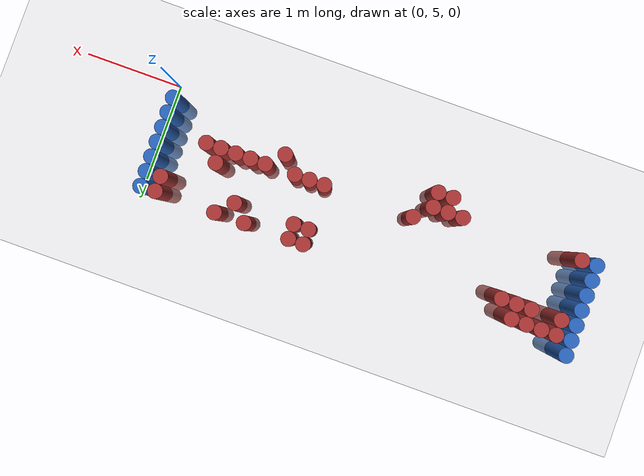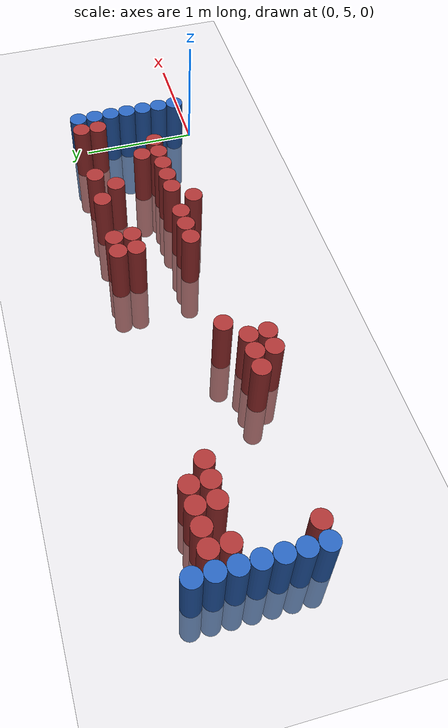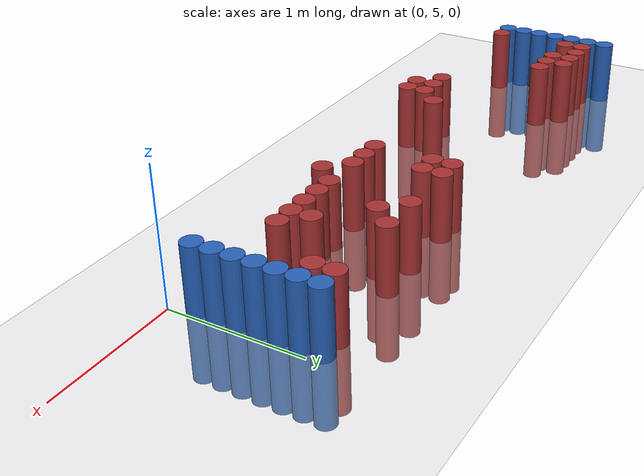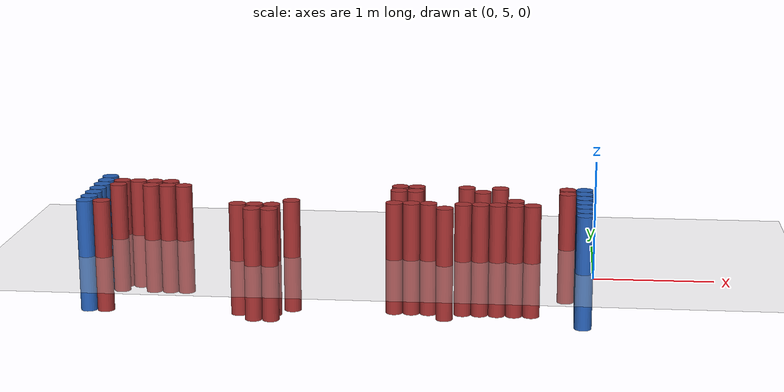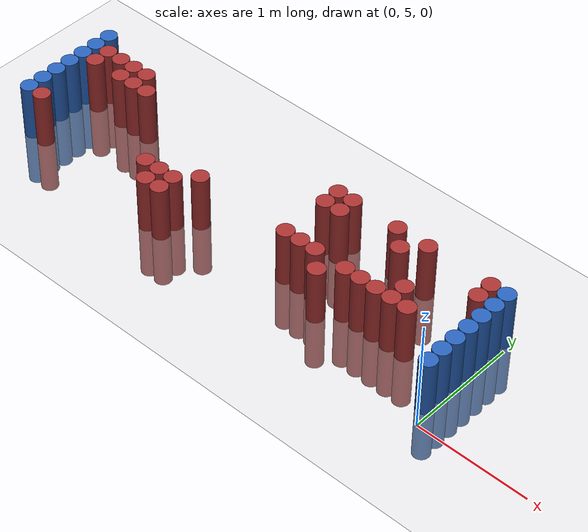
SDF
<sdf version="1.6">
 <world name="default">
  <model name="ground_plane">
   <static>1</static>
   <link name="link">
    <collision name="collision">
     <geometry><plane><normal>0 0 1</normal><size>100 100</size></plane></geometry>
     <surface><friction><ode><mu>100</mu><mu2>50</mu2></ode></friction></surface>
    </collision>
    <visual name="visual">
     <cast_shadows>0</cast_shadows>
     <geometry><plane><normal>0 0 1</normal><size>100 100</size></plane></geometry>
     <material>
      <script><uri>file://media/materials/scripts/gazebo.material</uri><name>Gazebo/Grey</name></script>
     </material>
    </visual>
   </link>
  </model>
  <model name="unit_cylinder_97">
   <static>1</static>
   <pose>-4.425000 5.325000 0.000000 0.000000 0.000000 0.000000</pose>
   <link name="link">
    <inertial>
     <mass>1</mass>
     <inertia><ixx>0.145833</ixx><ixy>0</ixy><ixz>0</ixz><iyy>0.145833</iyy><iyz>0</iyz><izz>0.125</izz></inertia>
    </inertial>
    <collision name="collision">
     <geometry><cylinder><radius>0.075000</radius><length>1</length></cylinder></geometry>
    </collision>
    <visual name="visual">
     <geometry><cylinder><radius>0.075000</radius><length>1</length></cylinder></geometry>
     <material>
      <ambient>0.152000 0.379000 0.720000 1</ambient>
      <diffuse>0.152000 0.379000 0.720000 1</diffuse>
     </material>
     <material>
      <script><name>Gazebo/Grey</name><uri>file://media/materials/scripts/gazebo.material</uri></script>
     </material>
    </visual>
   </link>
  </model>
  <model name="unit_cylinder_98">
   <static>1</static>
   <pose>-4.425000 5.475000 0.000000 0.000000 0.000000 0.000000</pose>
   <link name="link">
    <inertial>
     <mass>1</mass>
     <inertia><ixx>0.145833</ixx><ixy>0</ixy><ixz>0</ixz><iyy>0.145833</iyy><iyz>0</iyz><izz>0.125</izz></inertia>
    </inertial>
    <collision name="collision">
     <geometry><cylinder><radius>0.075000</radius><length>1</length></cylinder></geometry>
    </collision>
    <visual name="visual">
     <geometry><cylinder><radius>0.075000</radius><length>1</length></cylinder></geometry>
     <material>
      <ambient>0.152000 0.379000 0.720000 1</ambient>
      <diffuse>0.152000 0.379000 0.720000 1</diffuse>
     </material>
     <material>
      <script><name>Gazebo/Grey</name><uri>file://media/materials/scripts/gazebo.material</uri></script>
     </material>
    </visual>
   </link>
  </model>
  <model name="unit_cylinder_99">
   <static>1</static>
   <pose>-4.425000 5.625000 0.000000 0.000000 0.000000 0.000000</pose>
   <link name="link">
    <inertial>
     <mass>1</mass>
     <inertia><ixx>0.145833</ixx><ixy>0</ixy><ixz>0</ixz><iyy>0.145833</iyy><iyz>0</iyz><izz>0.125</izz></inertia>
    </inertial>
    <collision name="collision">
     <geometry><cylinder><radius>0.075000</radius><length>1</length></cylinder></geometry>
    </collision>
    <visual name="visual">
     <geometry><cylinder><radius>0.075000</radius><length>1</length></cylinder></geometry>
     <material>
      <ambient>0.152000 0.379000 0.720000 1</ambient>
      <diffuse>0.152000 0.379000 0.720000 1</diffuse>
     </material>
     <material>
      <script><name>Gazebo/Grey</name><uri>file://media/materials/scripts/gazebo.material</uri></script>
     </material>
    </visual>
   </link>
  </model>
  <model name="unit_cylinder_100">
   <static>1</static>
   <pose>-4.425000 5.775000 0.000000 0.000000 0.000000 0.000000</pose>
   <link name="link">
    <inertial>
     <mass>1</mass>
     <inertia><ixx>0.145833</ixx><ixy>0</ixy><ixz>0</ixz><iyy>0.145833</iyy><iyz>0</iyz><izz>0.125</izz></inertia>
    </inertial>
    <collision name="collision">
     <geometry><cylinder><radius>0.075000</radius><length>1</length></cylinder></geometry>
    </collision>
    <visual name="visual">
     <geometry><cylinder><radius>0.075000</radius><length>1</length></cylinder></geometry>
     <material>
      <ambient>0.152000 0.379000 0.720000 1</ambient>
      <diffuse>0.152000 0.379000 0.720000 1</diffuse>
     </material>
     <material>
      <script><name>Gazebo/Grey</name><uri>file://media/materials/scripts/gazebo.material</uri></script>
     </material>
    </visual>
   </link>
  </model>
  <model name="unit_cylinder_101">
   <static>1</static>
   <pose>-4.425000 5.925000 0.000000 0.000000 0.000000 0.000000</pose>
   <link name="link">
    <inertial>
     <mass>1</mass>
     <inertia><ixx>0.145833</ixx><ixy>0</ixy><ixz>0</ixz><iyy>0.145833</iyy><iyz>0</iyz><izz>0.125</izz></inertia>
    </inertial>
    <collision name="collision">
     <geometry><cylinder><radius>0.075000</radius><length>1</length></cylinder></geometry>
    </collision>
    <visual name="visual">
     <geometry><cylinder><radius>0.075000</radius><length>1</length></cylinder></geometry>
     <material>
      <ambient>0.152000 0.379000 0.720000 1</ambient>
      <diffuse>0.152000 0.379000 0.720000 1</diffuse>
     </material>
     <material>
      <script><name>Gazebo/Grey</name><uri>file://media/materials/scripts/gazebo.material</uri></script>
     </material>
    </visual>
   </link>
  </model>
  <model name="unit_cylinder_102">
   <static>1</static>
   <pose>-4.425000 6.075000 0.000000 0.000000 0.000000 0.000000</pose>
   <link name="link">
    <inertial>
     <mass>1</mass>
     <inertia><ixx>0.145833</ixx><ixy>0</ixy><ixz>0</ixz><iyy>0.145833</iyy><iyz>0</iyz><izz>0.125</izz></inertia>
    </inertial>
    <collision name="collision">
     <geometry><cylinder><radius>0.075000</radius><length>1</length></cylinder></geometry>
    </collision>
    <visual name="visual">
     <geometry><cylinder><radius>0.075000</radius><length>1</length></cylinder></geometry>
     <material>
      <ambient>0.152000 0.379000 0.720000 1</ambient>
      <diffuse>0.152000 0.379000 0.720000 1</diffuse>
     </material>
     <material>
      <script><name>Gazebo/Grey</name><uri>file://media/materials/scripts/gazebo.material</uri></script>
     </material>
    </visual>
   </link>
  </model>
  <model name="unit_cylinder_103">
   <static>1</static>
   <pose>-4.425000 6.225000 0.000000 0.000000 0.000000 0.000000</pose>
   <link name="link">
    <inertial>
     <mass>1</mass>
     <inertia><ixx>0.145833</ixx><ixy>0</ixy><ixz>0</ixz><iyy>0.145833</iyy><iyz>0</iyz><izz>0.125</izz></inertia>
    </inertial>
    <collision name="collision">
     <geometry><cylinder><radius>0.075000</radius><length>1</length></cylinder></geometry>
    </collision>
    <visual name="visual">
     <geometry><cylinder><radius>0.075000</radius><length>1</length></cylinder></geometry>
     <material>
      <ambient>0.152000 0.379000 0.720000 1</ambient>
      <diffuse>0.152000 0.379000 0.720000 1</diffuse>
     </material>
     <material>
      <script><name>Gazebo/Grey</name><uri>file://media/materials/scripts/gazebo.material</uri></script>
     </material>
    </visual>
   </link>
  </model>
  <model name="unit_cylinder_126">
   <static>1</static>
   <pose>-4.275000 5.325000 0.000000 0.000000 0.000000 0.000000</pose>
   <link name="link">
    <inertial>
     <mass>1</mass>
     <inertia><ixx>0.145833</ixx><ixy>0</ixy><ixz>0</ixz><iyy>0.145833</iyy><iyz>0</iyz><izz>0.125</izz></inertia>
    </inertial>
    <collision name="collision">
     <geometry><cylinder><radius>0.075000</radius><length>1</length></cylinder></geometry>
    </collision>
    <visual name="visual">
     <geometry><cylinder><radius>0.075000</radius><length>1</length></cylinder></geometry>
     <material>
      <ambient>0.648000 0.192000 0.192000 1</ambient>
      <diffuse>0.648000 0.192000 0.192000 1</diffuse>
     </material>
     <material>
      <script><name>Gazebo/Grey</name><uri>file://media/materials/scripts/gazebo.material</uri></script>
     </material>
    </visual>
   </link>
  </model>
  <model name="unit_cylinder_127">
   <static>1</static>
   <pose>-4.275000 5.925000 0.000000 0.000000 0.000000 0.000000</pose>
   <link name="link">
    <inertial>
     <mass>1</mass>
     <inertia><ixx>0.145833</ixx><ixy>0</ixy><ixz>0</ixz><iyy>0.145833</iyy><iyz>0</iyz><izz>0.125</izz></inertia>
    </inertial>
    <collision name="collision">
     <geometry><cylinder><radius>0.075000</radius><length>1</length></cylinder></geometry>
    </collision>
    <visual name="visual">
     <geometry><cylinder><radius>0.075000</radius><length>1</length></cylinder></geometry>
     <material>
      <ambient>0.648000 0.192000 0.192000 1</ambient>
      <diffuse>0.648000 0.192000 0.192000 1</diffuse>
     </material>
     <material>
      <script><name>Gazebo/Grey</name><uri>file://media/materials/scripts/gazebo.material</uri></script>
     </material>
    </visual>
   </link>
  </model>
  <model name="unit_cylinder_128">
   <static>1</static>
   <pose>-4.275000 6.075000 0.000000 0.000000 0.000000 0.000000</pose>
   <link name="link">
    <inertial>
     <mass>1</mass>
     <inertia><ixx>0.145833</ixx><ixy>0</ixy><ixz>0</ixz><iyy>0.145833</iyy><iyz>0</iyz><izz>0.125</izz></inertia>
    </inertial>
    <collision name="collision">
     <geometry><cylinder><radius>0.075000</radius><length>1</length></cylinder></geometry>
    </collision>
    <visual name="visual">
     <geometry><cylinder><radius>0.075000</radius><length>1</length></cylinder></geometry>
     <material>
      <ambient>0.648000 0.192000 0.192000 1</ambient>
      <diffuse>0.648000 0.192000 0.192000 1</diffuse>
     </material>
     <material>
      <script><name>Gazebo/Grey</name><uri>file://media/materials/scripts/gazebo.material</uri></script>
     </material>
    </visual>
   </link>
  </model>
  <model name="unit_cylinder_143">
   <static>1</static>
   <pose>-4.125000 6.075000 0.000000 0.000000 0.000000 0.000000</pose>
   <link name="link">
    <inertial>
     <mass>1</mass>
     <inertia><ixx>0.145833</ixx><ixy>0</ixy><ixz>0</ixz><iyy>0.145833</iyy><iyz>0</iyz><izz>0.125</izz></inertia>
    </inertial>
    <collision name="collision">
     <geometry><cylinder><radius>0.075000</radius><length>1</length></cylinder></geometry>
    </collision>
    <visual name="visual">
     <geometry><cylinder><radius>0.075000</radius><length>1</length></cylinder></geometry>
     <material>
      <ambient>0.648000 0.192000 0.192000 1</ambient>
      <diffuse>0.648000 0.192000 0.192000 1</diffuse>
     </material>
     <material>
      <script><name>Gazebo/Grey</name><uri>file://media/materials/scripts/gazebo.material</uri></script>
     </material>
    </visual>
   </link>
  </model>
  <model name="unit_cylinder_157">
   <static>1</static>
   <pose>-3.975000 5.925000 0.000000 0.000000 0.000000 0.000000</pose>
   <link name="link">
    <inertial>
     <mass>1</mass>
     <inertia><ixx>0.145833</ixx><ixy>0</ixy><ixz>0</ixz><iyy>0.145833</iyy><iyz>0</iyz><izz>0.125</izz></inertia>
    </inertial>
    <collision name="collision">
     <geometry><cylinder><radius>0.075000</radius><length>1</length></cylinder></geometry>
    </collision>
    <visual name="visual">
     <geometry><cylinder><radius>0.075000</radius><length>1</length></cylinder></geometry>
     <material>
      <ambient>0.648000 0.192000 0.192000 1</ambient>
      <diffuse>0.648000 0.192000 0.192000 1</diffuse>
     </material>
     <material>
      <script><name>Gazebo/Grey</name><uri>file://media/materials/scripts/gazebo.material</uri></script>
     </material>
    </visual>
   </link>
  </model>
  <model name="unit_cylinder_158">
   <static>1</static>
   <pose>-3.975000 6.075000 0.000000 0.000000 0.000000 0.000000</pose>
   <link name="link">
    <inertial>
     <mass>1</mass>
     <inertia><ixx>0.145833</ixx><ixy>0</ixy><ixz>0</ixz><iyy>0.145833</iyy><iyz>0</iyz><izz>0.125</izz></inertia>
    </inertial>
    <collision name="collision">
     <geometry><cylinder><radius>0.075000</radius><length>1</length></cylinder></geometry>
    </collision>
    <visual name="visual">
     <geometry><cylinder><radius>0.075000</radius><length>1</length></cylinder></geometry>
     <material>
      <ambient>0.648000 0.192000 0.192000 1</ambient>
      <diffuse>0.648000 0.192000 0.192000 1</diffuse>
     </material>
     <material>
      <script><name>Gazebo/Grey</name><uri>file://media/materials/scripts/gazebo.material</uri></script>
     </material>
    </visual>
   </link>
  </model>
  <model name="unit_cylinder_161">
   <static>1</static>
   <pose>-3.825000 5.925000 0.000000 0.000000 0.000000 0.000000</pose>
   <link name="link">
    <inertial>
     <mass>1</mass>
     <inertia><ixx>0.145833</ixx><ixy>0</ixy><ixz>0</ixz><iyy>0.145833</iyy><iyz>0</iyz><izz>0.125</izz></inertia>
    </inertial>
    <collision name="collision">
     <geometry><cylinder><radius>0.075000</radius><length>1</length></cylinder></geometry>
    </collision>
    <visual name="visual">
     <geometry><cylinder><radius>0.075000</radius><length>1</length></cylinder></geometry>
     <material>
      <ambient>0.648000 0.192000 0.192000 1</ambient>
      <diffuse>0.648000 0.192000 0.192000 1</diffuse>
     </material>
     <material>
      <script><name>Gazebo/Grey</name><uri>file://media/materials/scripts/gazebo.material</uri></script>
     </material>
    </visual>
   </link>
  </model>
  <model name="unit_cylinder_162">
   <static>1</static>
   <pose>-3.825000 6.075000 0.000000 0.000000 0.000000 0.000000</pose>
   <link name="link">
    <inertial>
     <mass>1</mass>
     <inertia><ixx>0.145833</ixx><ixy>0</ixy><ixz>0</ixz><iyy>0.145833</iyy><iyz>0</iyz><izz>0.125</izz></inertia>
    </inertial>
    <collision name="collision">
     <geometry><cylinder><radius>0.075000</radius><length>1</length></cylinder></geometry>
    </collision>
    <visual name="visual">
     <geometry><cylinder><radius>0.075000</radius><length>1</length></cylinder></geometry>
     <material>
      <ambient>0.648000 0.192000 0.192000 1</ambient>
      <diffuse>0.648000 0.192000 0.192000 1</diffuse>
     </material>
     <material>
      <script><name>Gazebo/Grey</name><uri>file://media/materials/scripts/gazebo.material</uri></script>
     </material>
    </visual>
   </link>
  </model>
  <model name="unit_cylinder_168">
   <static>1</static>
   <pose>-3.675000 5.925000 0.000000 0.000000 0.000000 0.000000</pose>
   <link name="link">
    <inertial>
     <mass>1</mass>
     <inertia><ixx>0.145833</ixx><ixy>0</ixy><ixz>0</ixz><iyy>0.145833</iyy><iyz>0</iyz><izz>0.125</izz></inertia>
    </inertial>
    <collision name="collision">
     <geometry><cylinder><radius>0.075000</radius><length>1</length></cylinder></geometry>
    </collision>
    <visual name="visual">
     <geometry><cylinder><radius>0.075000</radius><length>1</length></cylinder></geometry>
     <material>
      <ambient>0.648000 0.192000 0.192000 1</ambient>
      <diffuse>0.648000 0.192000 0.192000 1</diffuse>
     </material>
     <material>
      <script><name>Gazebo/Grey</name><uri>file://media/materials/scripts/gazebo.material</uri></script>
     </material>
    </visual>
   </link>
  </model>
  <model name="unit_cylinder_187">
   <static>1</static>
   <pose>-3.075000 5.325000 0.000000 0.000000 0.000000 0.000000</pose>
   <link name="link">
    <inertial>
     <mass>1</mass>
     <inertia><ixx>0.145833</ixx><ixy>0</ixy><ixz>0</ixz><iyy>0.145833</iyy><iyz>0</iyz><izz>0.125</izz></inertia>
    </inertial>
    <collision name="collision">
     <geometry><cylinder><radius>0.075000</radius><length>1</length></cylinder></geometry>
    </collision>
    <visual name="visual">
     <geometry><cylinder><radius>0.075000</radius><length>1</length></cylinder></geometry>
     <material>
      <ambient>0.648000 0.192000 0.192000 1</ambient>
      <diffuse>0.648000 0.192000 0.192000 1</diffuse>
     </material>
     <material>
      <script><name>Gazebo/Grey</name><uri>file://media/materials/scripts/gazebo.material</uri></script>
     </material>
    </visual>
   </link>
  </model>
  <model name="unit_cylinder_196">
   <static>1</static>
   <pose>-2.925000 5.175000 0.000000 0.000000 0.000000 0.000000</pose>
   <link name="link">
    <inertial>
     <mass>1</mass>
     <inertia><ixx>0.145833</ixx><ixy>0</ixy><ixz>0</ixz><iyy>0.145833</iyy><iyz>0</iyz><izz>0.125</izz></inertia>
    </inertial>
    <collision name="collision">
     <geometry><cylinder><radius>0.075000</radius><length>1</length></cylinder></geometry>
    </collision>
    <visual name="visual">
     <geometry><cylinder><radius>0.075000</radius><length>1</length></cylinder></geometry>
     <material>
      <ambient>0.648000 0.192000 0.192000 1</ambient>
      <diffuse>0.648000 0.192000 0.192000 1</diffuse>
     </material>
     <material>
      <script><name>Gazebo/Grey</name><uri>file://media/materials/scripts/gazebo.material</uri></script>
     </material>
    </visual>
   </link>
  </model>
  <model name="unit_cylinder_197">
   <static>1</static>
   <pose>-2.925000 5.325000 0.000000 0.000000 0.000000 0.000000</pose>
   <link name="link">
    <inertial>
     <mass>1</mass>
     <inertia><ixx>0.145833</ixx><ixy>0</ixy><ixz>0</ixz><iyy>0.145833</iyy><iyz>0</iyz><izz>0.125</izz></inertia>
    </inertial>
    <collision name="collision">
     <geometry><cylinder><radius>0.075000</radius><length>1</length></cylinder></geometry>
    </collision>
    <visual name="visual">
     <geometry><cylinder><radius>0.075000</radius><length>1</length></cylinder></geometry>
     <material>
      <ambient>0.648000 0.192000 0.192000 1</ambient>
      <diffuse>0.648000 0.192000 0.192000 1</diffuse>
     </material>
     <material>
      <script><name>Gazebo/Grey</name><uri>file://media/materials/scripts/gazebo.material</uri></script>
     </material>
    </visual>
   </link>
  </model>
  <model name="unit_cylinder_206">
   <static>1</static>
   <pose>-2.775000 5.175000 0.000000 0.000000 0.000000 0.000000</pose>
   <link name="link">
    <inertial>
     <mass>1</mass>
     <inertia><ixx>0.145833</ixx><ixy>0</ixy><ixz>0</ixz><iyy>0.145833</iyy><iyz>0</iyz><izz>0.125</izz></inertia>
    </inertial>
    <collision name="collision">
     <geometry><cylinder><radius>0.075000</radius><length>1</length></cylinder></geometry>
    </collision>
    <visual name="visual">
     <geometry><cylinder><radius>0.075000</radius><length>1</length></cylinder></geometry>
     <material>
      <ambient>0.648000 0.192000 0.192000 1</ambient>
      <diffuse>0.648000 0.192000 0.192000 1</diffuse>
     </material>
     <material>
      <script><name>Gazebo/Grey</name><uri>file://media/materials/scripts/gazebo.material</uri></script>
     </material>
    </visual>
   </link>
  </model>
  <model name="unit_cylinder_207">
   <static>1</static>
   <pose>-2.775000 5.325000 0.000000 0.000000 0.000000 0.000000</pose>
   <link name="link">
    <inertial>
     <mass>1</mass>
     <inertia><ixx>0.145833</ixx><ixy>0</ixy><ixz>0</ixz><iyy>0.145833</iyy><iyz>0</iyz><izz>0.125</izz></inertia>
    </inertial>
    <collision name="collision">
     <geometry><cylinder><radius>0.075000</radius><length>1</length></cylinder></geometry>
    </collision>
    <visual name="visual">
     <geometry><cylinder><radius>0.075000</radius><length>1</length></cylinder></geometry>
     <material>
      <ambient>0.648000 0.192000 0.192000 1</ambient>
      <diffuse>0.648000 0.192000 0.192000 1</diffuse>
     </material>
     <material>
      <script><name>Gazebo/Grey</name><uri>file://media/materials/scripts/gazebo.material</uri></script>
     </material>
    </visual>
   </link>
  </model>
  <model name="unit_cylinder_214">
   <static>1</static>
   <pose>-2.625000 5.475000 0.000000 0.000000 0.000000 0.000000</pose>
   <link name="link">
    <inertial>
     <mass>1</mass>
     <inertia><ixx>0.145833</ixx><ixy>0</ixy><ixz>0</ixz><iyy>0.145833</iyy><iyz>0</iyz><izz>0.125</izz></inertia>
    </inertial>
    <collision name="collision">
     <geometry><cylinder><radius>0.075000</radius><length>1</length></cylinder></geometry>
    </collision>
    <visual name="visual">
     <geometry><cylinder><radius>0.075000</radius><length>1</length></cylinder></geometry>
     <material>
      <ambient>0.648000 0.192000 0.192000 1</ambient>
      <diffuse>0.648000 0.192000 0.192000 1</diffuse>
     </material>
     <material>
      <script><name>Gazebo/Grey</name><uri>file://media/materials/scripts/gazebo.material</uri></script>
     </material>
    </visual>
   </link>
  </model>
  <model name="unit_cylinder_249">
   <static>1</static>
   <pose>-1.725000 5.475000 0.000000 0.000000 0.000000 0.000000</pose>
   <link name="link">
    <inertial>
     <mass>1</mass>
     <inertia><ixx>0.145833</ixx><ixy>0</ixy><ixz>0</ixz><iyy>0.145833</iyy><iyz>0</iyz><izz>0.125</izz></inertia>
    </inertial>
    <collision name="collision">
     <geometry><cylinder><radius>0.075000</radius><length>1</length></cylinder></geometry>
    </collision>
    <visual name="visual">
     <geometry><cylinder><radius>0.075000</radius><length>1</length></cylinder></geometry>
     <material>
      <ambient>0.648000 0.192000 0.192000 1</ambient>
      <diffuse>0.648000 0.192000 0.192000 1</diffuse>
     </material>
     <material>
      <script><name>Gazebo/Grey</name><uri>file://media/materials/scripts/gazebo.material</uri></script>
     </material>
    </visual>
   </link>
  </model>
  <model name="unit_cylinder_250">
   <static>1</static>
   <pose>-1.725000 5.925000 0.000000 0.000000 0.000000 0.000000</pose>
   <link name="link">
    <inertial>
     <mass>1</mass>
     <inertia><ixx>0.145833</ixx><ixy>0</ixy><ixz>0</ixz><iyy>0.145833</iyy><iyz>0</iyz><izz>0.125</izz></inertia>
    </inertial>
    <collision name="collision">
     <geometry><cylinder><radius>0.075000</radius><length>1</length></cylinder></geometry>
    </collision>
    <visual name="visual">
     <geometry><cylinder><radius>0.075000</radius><length>1</length></cylinder></geometry>
     <material>
      <ambient>0.648000 0.192000 0.192000 1</ambient>
      <diffuse>0.648000 0.192000 0.192000 1</diffuse>
     </material>
     <material>
      <script><name>Gazebo/Grey</name><uri>file://media/materials/scripts/gazebo.material</uri></script>
     </material>
    </visual>
   </link>
  </model>
  <model name="unit_cylinder_251">
   <static>1</static>
   <pose>-1.725000 6.075000 0.000000 0.000000 0.000000 0.000000</pose>
   <link name="link">
    <inertial>
     <mass>1</mass>
     <inertia><ixx>0.145833</ixx><ixy>0</ixy><ixz>0</ixz><iyy>0.145833</iyy><iyz>0</iyz><izz>0.125</izz></inertia>
    </inertial>
    <collision name="collision">
     <geometry><cylinder><radius>0.075000</radius><length>1</length></cylinder></geometry>
    </collision>
    <visual name="visual">
     <geometry><cylinder><radius>0.075000</radius><length>1</length></cylinder></geometry>
     <material>
      <ambient>0.648000 0.192000 0.192000 1</ambient>
      <diffuse>0.648000 0.192000 0.192000 1</diffuse>
     </material>
     <material>
      <script><name>Gazebo/Grey</name><uri>file://media/materials/scripts/gazebo.material</uri></script>
     </material>
    </visual>
   </link>
  </model>
  <model name="unit_cylinder_252">
   <static>1</static>
   <pose>-1.575000 5.475000 0.000000 0.000000 0.000000 0.000000</pose>
   <link name="link">
    <inertial>
     <mass>1</mass>
     <inertia><ixx>0.145833</ixx><ixy>0</ixy><ixz>0</ixz><iyy>0.145833</iyy><iyz>0</iyz><izz>0.125</izz></inertia>
    </inertial>
    <collision name="collision">
     <geometry><cylinder><radius>0.075000</radius><length>1</length></cylinder></geometry>
    </collision>
    <visual name="visual">
     <geometry><cylinder><radius>0.075000</radius><length>1</length></cylinder></geometry>
     <material>
      <ambient>0.648000 0.192000 0.192000 1</ambient>
      <diffuse>0.648000 0.192000 0.192000 1</diffuse>
     </material>
     <material>
      <script><name>Gazebo/Grey</name><uri>file://media/materials/scripts/gazebo.material</uri></script>
     </material>
    </visual>
   </link>
  </model>
  <model name="unit_cylinder_253">
   <static>1</static>
   <pose>-1.575000 5.925000 0.000000 0.000000 0.000000 0.000000</pose>
   <link name="link">
    <inertial>
     <mass>1</mass>
     <inertia><ixx>0.145833</ixx><ixy>0</ixy><ixz>0</ixz><iyy>0.145833</iyy><iyz>0</iyz><izz>0.125</izz></inertia>
    </inertial>
    <collision name="collision">
     <geometry><cylinder><radius>0.075000</radius><length>1</length></cylinder></geometry>
    </collision>
    <visual name="visual">
     <geometry><cylinder><radius>0.075000</radius><length>1</length></cylinder></geometry>
     <material>
      <ambient>0.648000 0.192000 0.192000 1</ambient>
      <diffuse>0.648000 0.192000 0.192000 1</diffuse>
     </material>
     <material>
      <script><name>Gazebo/Grey</name><uri>file://media/materials/scripts/gazebo.material</uri></script>
     </material>
    </visual>
   </link>
  </model>
  <model name="unit_cylinder_254">
   <static>1</static>
   <pose>-1.575000 6.075000 0.000000 0.000000 0.000000 0.000000</pose>
   <link name="link">
    <inertial>
     <mass>1</mass>
     <inertia><ixx>0.145833</ixx><ixy>0</ixy><ixz>0</ixz><iyy>0.145833</iyy><iyz>0</iyz><izz>0.125</izz></inertia>
    </inertial>
    <collision name="collision">
     <geometry><cylinder><radius>0.075000</radius><length>1</length></cylinder></geometry>
    </collision>
    <visual name="visual">
     <geometry><cylinder><radius>0.075000</radius><length>1</length></cylinder></geometry>
     <material>
      <ambient>0.648000 0.192000 0.192000 1</ambient>
      <diffuse>0.648000 0.192000 0.192000 1</diffuse>
     </material>
     <material>
      <script><name>Gazebo/Grey</name><uri>file://media/materials/scripts/gazebo.material</uri></script>
     </material>
    </visual>
   </link>
  </model>
  <model name="unit_cylinder_257">
   <static>1</static>
   <pose>-1.425000 5.475000 0.000000 0.000000 0.000000 0.000000</pose>
   <link name="link">
    <inertial>
     <mass>1</mass>
     <inertia><ixx>0.145833</ixx><ixy>0</ixy><ixz>0</ixz><iyy>0.145833</iyy><iyz>0</iyz><izz>0.125</izz></inertia>
    </inertial>
    <collision name="collision">
     <geometry><cylinder><radius>0.075000</radius><length>1</length></cylinder></geometry>
    </collision>
    <visual name="visual">
     <geometry><cylinder><radius>0.075000</radius><length>1</length></cylinder></geometry>
     <material>
      <ambient>0.648000 0.192000 0.192000 1</ambient>
      <diffuse>0.648000 0.192000 0.192000 1</diffuse>
     </material>
     <material>
      <script><name>Gazebo/Grey</name><uri>file://media/materials/scripts/gazebo.material</uri></script>
     </material>
    </visual>
   </link>
  </model>
  <model name="unit_cylinder_260">
   <static>1</static>
   <pose>-1.275000 5.325000 0.000000 0.000000 0.000000 0.000000</pose>
   <link name="link">
    <inertial>
     <mass>1</mass>
     <inertia><ixx>0.145833</ixx><ixy>0</ixy><ixz>0</ixz><iyy>0.145833</iyy><iyz>0</iyz><izz>0.125</izz></inertia>
    </inertial>
    <collision name="collision">
     <geometry><cylinder><radius>0.075000</radius><length>1</length></cylinder></geometry>
    </collision>
    <visual name="visual">
     <geometry><cylinder><radius>0.075000</radius><length>1</length></cylinder></geometry>
     <material>
      <ambient>0.648000 0.192000 0.192000 1</ambient>
      <diffuse>0.648000 0.192000 0.192000 1</diffuse>
     </material>
     <material>
      <script><name>Gazebo/Grey</name><uri>file://media/materials/scripts/gazebo.material</uri></script>
     </material>
    </visual>
   </link>
  </model>
  <model name="unit_cylinder_261">
   <static>1</static>
   <pose>-1.125000 5.475000 0.000000 0.000000 0.000000 0.000000</pose>
   <link name="link">
    <inertial>
     <mass>1</mass>
     <inertia><ixx>0.145833</ixx><ixy>0</ixy><ixz>0</ixz><iyy>0.145833</iyy><iyz>0</iyz><izz>0.125</izz></inertia>
    </inertial>
    <collision name="collision">
     <geometry><cylinder><radius>0.075000</radius><length>1</length></cylinder></geometry>
    </collision>
    <visual name="visual">
     <geometry><cylinder><radius>0.075000</radius><length>1</length></cylinder></geometry>
     <material>
      <ambient>0.648000 0.192000 0.192000 1</ambient>
      <diffuse>0.648000 0.192000 0.192000 1</diffuse>
     </material>
     <material>
      <script><name>Gazebo/Grey</name><uri>file://media/materials/scripts/gazebo.material</uri></script>
     </material>
    </visual>
   </link>
  </model>
  <model name="unit_cylinder_262">
   <static>1</static>
   <pose>-1.125000 6.075000 0.000000 0.000000 0.000000 0.000000</pose>
   <link name="link">
    <inertial>
     <mass>1</mass>
     <inertia><ixx>0.145833</ixx><ixy>0</ixy><ixz>0</ixz><iyy>0.145833</iyy><iyz>0</iyz><izz>0.125</izz></inertia>
    </inertial>
    <collision name="collision">
     <geometry><cylinder><radius>0.075000</radius><length>1</length></cylinder></geometry>
    </collision>
    <visual name="visual">
     <geometry><cylinder><radius>0.075000</radius><length>1</length></cylinder></geometry>
     <material>
      <ambient>0.648000 0.192000 0.192000 1</ambient>
      <diffuse>0.648000 0.192000 0.192000 1</diffuse>
     </material>
     <material>
      <script><name>Gazebo/Grey</name><uri>file://media/materials/scripts/gazebo.material</uri></script>
     </material>
    </visual>
   </link>
  </model>
  <model name="unit_cylinder_264">
   <static>1</static>
   <pose>-0.975000 5.475000 0.000000 0.000000 0.000000 0.000000</pose>
   <link name="link">
    <inertial>
     <mass>1</mass>
     <inertia><ixx>0.145833</ixx><ixy>0</ixy><ixz>0</ixz><iyy>0.145833</iyy><iyz>0</iyz><izz>0.125</izz></inertia>
    </inertial>
    <collision name="collision">
     <geometry><cylinder><radius>0.075000</radius><length>1</length></cylinder></geometry>
    </collision>
    <visual name="visual">
     <geometry><cylinder><radius>0.075000</radius><length>1</length></cylinder></geometry>
     <material>
      <ambient>0.648000 0.192000 0.192000 1</ambient>
      <diffuse>0.648000 0.192000 0.192000 1</diffuse>
     </material>
     <material>
      <script><name>Gazebo/Grey</name><uri>file://media/materials/scripts/gazebo.material</uri></script>
     </material>
    </visual>
   </link>
  </model>
  <model name="unit_cylinder_265">
   <static>1</static>
   <pose>-0.975000 5.925000 0.000000 0.000000 0.000000 0.000000</pose>
   <link name="link">
    <inertial>
     <mass>1</mass>
     <inertia><ixx>0.145833</ixx><ixy>0</ixy><ixz>0</ixz><iyy>0.145833</iyy><iyz>0</iyz><izz>0.125</izz></inertia>
    </inertial>
    <collision name="collision">
     <geometry><cylinder><radius>0.075000</radius><length>1</length></cylinder></geometry>
    </collision>
    <visual name="visual">
     <geometry><cylinder><radius>0.075000</radius><length>1</length></cylinder></geometry>
     <material>
      <ambient>0.648000 0.192000 0.192000 1</ambient>
      <diffuse>0.648000 0.192000 0.192000 1</diffuse>
     </material>
     <material>
      <script><name>Gazebo/Grey</name><uri>file://media/materials/scripts/gazebo.material</uri></script>
     </material>
    </visual>
   </link>
  </model>
  <model name="unit_cylinder_268">
   <static>1</static>
   <pose>-0.825000 5.475000 0.000000 0.000000 0.000000 0.000000</pose>
   <link name="link">
    <inertial>
     <mass>1</mass>
     <inertia><ixx>0.145833</ixx><ixy>0</ixy><ixz>0</ixz><iyy>0.145833</iyy><iyz>0</iyz><izz>0.125</izz></inertia>
    </inertial>
    <collision name="collision">
     <geometry><cylinder><radius>0.075000</radius><length>1</length></cylinder></geometry>
    </collision>
    <visual name="visual">
     <geometry><cylinder><radius>0.075000</radius><length>1</length></cylinder></geometry>
     <material>
      <ambient>0.648000 0.192000 0.192000 1</ambient>
      <diffuse>0.648000 0.192000 0.192000 1</diffuse>
     </material>
     <material>
      <script><name>Gazebo/Grey</name><uri>file://media/materials/scripts/gazebo.material</uri></script>
     </material>
    </visual>
   </link>
  </model>
  <model name="unit_cylinder_269">
   <static>1</static>
   <pose>-0.825000 6.075000 0.000000 0.000000 0.000000 0.000000</pose>
   <link name="link">
    <inertial>
     <mass>1</mass>
     <inertia><ixx>0.145833</ixx><ixy>0</ixy><ixz>0</ixz><iyy>0.145833</iyy><iyz>0</iyz><izz>0.125</izz></inertia>
    </inertial>
    <collision name="collision">
     <geometry><cylinder><radius>0.075000</radius><length>1</length></cylinder></geometry>
    </collision>
    <visual name="visual">
     <geometry><cylinder><radius>0.075000</radius><length>1</length></cylinder></geometry>
     <material>
      <ambient>0.648000 0.192000 0.192000 1</ambient>
      <diffuse>0.648000 0.192000 0.192000 1</diffuse>
     </material>
     <material>
      <script><name>Gazebo/Grey</name><uri>file://media/materials/scripts/gazebo.material</uri></script>
     </material>
    </visual>
   </link>
  </model>
  <model name="unit_cylinder_273">
   <static>1</static>
   <pose>-0.675000 5.475000 0.000000 0.000000 0.000000 0.000000</pose>
   <link name="link">
    <inertial>
     <mass>1</mass>
     <inertia><ixx>0.145833</ixx><ixy>0</ixy><ixz>0</ixz><iyy>0.145833</iyy><iyz>0</iyz><izz>0.125</izz></inertia>
    </inertial>
    <collision name="collision">
     <geometry><cylinder><radius>0.075000</radius><length>1</length></cylinder></geometry>
    </collision>
    <visual name="visual">
     <geometry><cylinder><radius>0.075000</radius><length>1</length></cylinder></geometry>
     <material>
      <ambient>0.648000 0.192000 0.192000 1</ambient>
      <diffuse>0.648000 0.192000 0.192000 1</diffuse>
     </material>
     <material>
      <script><name>Gazebo/Grey</name><uri>file://media/materials/scripts/gazebo.material</uri></script>
     </material>
    </visual>
   </link>
  </model>
  <model name="unit_cylinder_274">
   <static>1</static>
   <pose>-0.675000 5.625000 0.000000 0.000000 0.000000 0.000000</pose>
   <link name="link">
    <inertial>
     <mass>1</mass>
     <inertia><ixx>0.145833</ixx><ixy>0</ixy><ixz>0</ixz><iyy>0.145833</iyy><iyz>0</iyz><izz>0.125</izz></inertia>
    </inertial>
    <collision name="collision">
     <geometry><cylinder><radius>0.075000</radius><length>1</length></cylinder></geometry>
    </collision>
    <visual name="visual">
     <geometry><cylinder><radius>0.075000</radius><length>1</length></cylinder></geometry>
     <material>
      <ambient>0.648000 0.192000 0.192000 1</ambient>
      <diffuse>0.648000 0.192000 0.192000 1</diffuse>
     </material>
     <material>
      <script><name>Gazebo/Grey</name><uri>file://media/materials/scripts/gazebo.material</uri></script>
     </material>
    </visual>
   </link>
  </model>
  <model name="unit_cylinder_280">
   <static>1</static>
   <pose>-0.525000 5.475000 0.000000 0.000000 0.000000 0.000000</pose>
   <link name="link">
    <inertial>
     <mass>1</mass>
     <inertia><ixx>0.145833</ixx><ixy>0</ixy><ixz>0</ixz><iyy>0.145833</iyy><iyz>0</iyz><izz>0.125</izz></inertia>
    </inertial>
    <collision name="collision">
     <geometry><cylinder><radius>0.075000</radius><length>1</length></cylinder></geometry>
    </collision>
    <visual name="visual">
     <geometry><cylinder><radius>0.075000</radius><length>1</length></cylinder></geometry>
     <material>
      <ambient>0.648000 0.192000 0.192000 1</ambient>
      <diffuse>0.648000 0.192000 0.192000 1</diffuse>
     </material>
     <material>
      <script><name>Gazebo/Grey</name><uri>file://media/materials/scripts/gazebo.material</uri></script>
     </material>
    </visual>
   </link>
  </model>
  <model name="unit_cylinder_295">
   <static>1</static>
   <pose>-0.225000 5.925000 0.000000 0.000000 0.000000 0.000000</pose>
   <link name="link">
    <inertial>
     <mass>1</mass>
     <inertia><ixx>0.145833</ixx><ixy>0</ixy><ixz>0</ixz><iyy>0.145833</iyy><iyz>0</iyz><izz>0.125</izz></inertia>
    </inertial>
    <collision name="collision">
     <geometry><cylinder><radius>0.075000</radius><length>1</length></cylinder></geometry>
    </collision>
    <visual name="visual">
     <geometry><cylinder><radius>0.075000</radius><length>1</length></cylinder></geometry>
     <material>
      <ambient>0.648000 0.192000 0.192000 1</ambient>
      <diffuse>0.648000 0.192000 0.192000 1</diffuse>
     </material>
     <material>
      <script><name>Gazebo/Grey</name><uri>file://media/materials/scripts/gazebo.material</uri></script>
     </material>
    </visual>
   </link>
  </model>
  <model name="unit_cylinder_296">
   <static>1</static>
   <pose>-0.225000 6.075000 0.000000 0.000000 0.000000 0.000000</pose>
   <link name="link">
    <inertial>
     <mass>1</mass>
     <inertia><ixx>0.145833</ixx><ixy>0</ixy><ixz>0</ixz><iyy>0.145833</iyy><iyz>0</iyz><izz>0.125</izz></inertia>
    </inertial>
    <collision name="collision">
     <geometry><cylinder><radius>0.075000</radius><length>1</length></cylinder></geometry>
    </collision>
    <visual name="visual">
     <geometry><cylinder><radius>0.075000</radius><length>1</length></cylinder></geometry>
     <material>
      <ambient>0.648000 0.192000 0.192000 1</ambient>
      <diffuse>0.648000 0.192000 0.192000 1</diffuse>
     </material>
     <material>
      <script><name>Gazebo/Grey</name><uri>file://media/materials/scripts/gazebo.material</uri></script>
     </material>
    </visual>
   </link>
  </model>
  <model name="unit_cylinder_309">
   <static>1</static>
   <pose>-0.075000 5.175000 0.000000 0.000000 0.000000 0.000000</pose>
   <link name="link">
    <inertial>
     <mass>1</mass>
     <inertia><ixx>0.145833</ixx><ixy>0</ixy><ixz>0</ixz><iyy>0.145833</iyy><iyz>0</iyz><izz>0.125</izz></inertia>
    </inertial>
    <collision name="collision">
     <geometry><cylinder><radius>0.075000</radius><length>1</length></cylinder></geometry>
    </collision>
    <visual name="visual">
     <geometry><cylinder><radius>0.075000</radius><length>1</length></cylinder></geometry>
     <material>
      <ambient>0.152000 0.379000 0.720000 1</ambient>
      <diffuse>0.152000 0.379000 0.720000 1</diffuse>
     </material>
     <material>
      <script><name>Gazebo/Grey</name><uri>file://media/materials/scripts/gazebo.material</uri></script>
     </material>
    </visual>
   </link>
  </model>
  <model name="unit_cylinder_310">
   <static>1</static>
   <pose>-0.075000 5.325000 0.000000 0.000000 0.000000 0.000000</pose>
   <link name="link">
    <inertial>
     <mass>1</mass>
     <inertia><ixx>0.145833</ixx><ixy>0</ixy><ixz>0</ixz><iyy>0.145833</iyy><iyz>0</iyz><izz>0.125</izz></inertia>
    </inertial>
    <collision name="collision">
     <geometry><cylinder><radius>0.075000</radius><length>1</length></cylinder></geometry>
    </collision>
    <visual name="visual">
     <geometry><cylinder><radius>0.075000</radius><length>1</length></cylinder></geometry>
     <material>
      <ambient>0.152000 0.379000 0.720000 1</ambient>
      <diffuse>0.152000 0.379000 0.720000 1</diffuse>
     </material>
     <material>
      <script><name>Gazebo/Grey</name><uri>file://media/materials/scripts/gazebo.material</uri></script>
     </material>
    </visual>
   </link>
  </model>
  <model name="unit_cylinder_311">
   <static>1</static>
   <pose>-0.075000 5.475000 0.000000 0.000000 0.000000 0.000000</pose>
   <link name="link">
    <inertial>
     <mass>1</mass>
     <inertia><ixx>0.145833</ixx><ixy>0</ixy><ixz>0</ixz><iyy>0.145833</iyy><iyz>0</iyz><izz>0.125</izz></inertia>
    </inertial>
    <collision name="collision">
     <geometry><cylinder><radius>0.075000</radius><length>1</length></cylinder></geometry>
    </collision>
    <visual name="visual">
     <geometry><cylinder><radius>0.075000</radius><length>1</length></cylinder></geometry>
     <material>
      <ambient>0.152000 0.379000 0.720000 1</ambient>
      <diffuse>0.152000 0.379000 0.720000 1</diffuse>
     </material>
     <material>
      <script><name>Gazebo/Grey</name><uri>file://media/materials/scripts/gazebo.material</uri></script>
     </material>
    </visual>
   </link>
  </model>
  <model name="unit_cylinder_312">
   <static>1</static>
   <pose>-0.075000 5.625000 0.000000 0.000000 0.000000 0.000000</pose>
   <link name="link">
    <inertial>
     <mass>1</mass>
     <inertia><ixx>0.145833</ixx><ixy>0</ixy><ixz>0</ixz><iyy>0.145833</iyy><iyz>0</iyz><izz>0.125</izz></inertia>
    </inertial>
    <collision name="collision">
     <geometry><cylinder><radius>0.075000</radius><length>1</length></cylinder></geometry>
    </collision>
    <visual name="visual">
     <geometry><cylinder><radius>0.075000</radius><length>1</length></cylinder></geometry>
     <material>
      <ambient>0.152000 0.379000 0.720000 1</ambient>
      <diffuse>0.152000 0.379000 0.720000 1</diffuse>
     </material>
     <material>
      <script><name>Gazebo/Grey</name><uri>file://media/materials/scripts/gazebo.material</uri></script>
     </material>
    </visual>
   </link>
  </model>
  <model name="unit_cylinder_313">
   <static>1</static>
   <pose>-0.075000 5.775000 0.000000 0.000000 0.000000 0.000000</pose>
   <link name="link">
    <inertial>
     <mass>1</mass>
     <inertia><ixx>0.145833</ixx><ixy>0</ixy><ixz>0</ixz><iyy>0.145833</iyy><iyz>0</iyz><izz>0.125</izz></inertia>
    </inertial>
    <collision name="collision">
     <geometry><cylinder><radius>0.075000</radius><length>1</length></cylinder></geometry>
    </collision>
    <visual name="visual">
     <geometry><cylinder><radius>0.075000</radius><length>1</length></cylinder></geometry>
     <material>
      <ambient>0.152000 0.379000 0.720000 1</ambient>
      <diffuse>0.152000 0.379000 0.720000 1</diffuse>
     </material>
     <material>
      <script><name>Gazebo/Grey</name><uri>file://media/materials/scripts/gazebo.material</uri></script>
     </material>
    </visual>
   </link>
  </model>
  <model name="unit_cylinder_314">
   <static>1</static>
   <pose>-0.075000 5.925000 0.000000 0.000000 0.000000 0.000000</pose>
   <link name="link">
    <inertial>
     <mass>1</mass>
     <inertia><ixx>0.145833</ixx><ixy>0</ixy><ixz>0</ixz><iyy>0.145833</iyy><iyz>0</iyz><izz>0.125</izz></inertia>
    </inertial>
    <collision name="collision">
     <geometry><cylinder><radius>0.075000</radius><length>1</length></cylinder></geometry>
    </collision>
    <visual name="visual">
     <geometry><cylinder><radius>0.075000</radius><length>1</length></cylinder></geometry>
     <material>
      <ambient>0.152000 0.379000 0.720000 1</ambient>
      <diffuse>0.152000 0.379000 0.720000 1</diffuse>
     </material>
     <material>
      <script><name>Gazebo/Grey</name><uri>file://media/materials/scripts/gazebo.material</uri></script>
     </material>
    </visual>
   </link>
  </model>
  <model name="unit_cylinder_315">
   <static>1</static>
   <pose>-0.075000 6.075000 0.000000 0.000000 0.000000 0.000000</pose>
   <link name="link">
    <inertial>
     <mass>1</mass>
     <inertia><ixx>0.145833</ixx><ixy>0</ixy><ixz>0</ixz><iyy>0.145833</iyy><iyz>0</iyz><izz>0.125</izz></inertia>
    </inertial>
    <collision name="collision">
     <geometry><cylinder><radius>0.075000</radius><length>1</length></cylinder></geometry>
    </collision>
    <visual name="visual">
     <geometry><cylinder><radius>0.075000</radius><length>1</length></cylinder></geometry>
     <material>
      <ambient>0.152000 0.379000 0.720000 1</ambient>
      <diffuse>0.152000 0.379000 0.720000 1</diffuse>
     </material>
     <material>
      <script><name>Gazebo/Grey</name><uri>file://media/materials/scripts/gazebo.material</uri></script>
     </material>
    </visual>
   </link>
  </model>
 </world>
</sdf>
